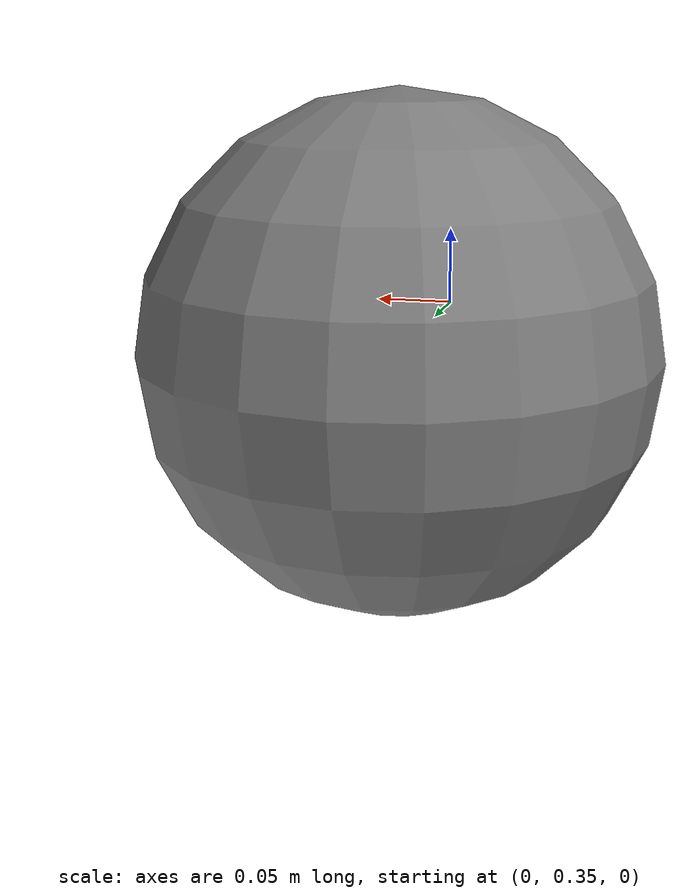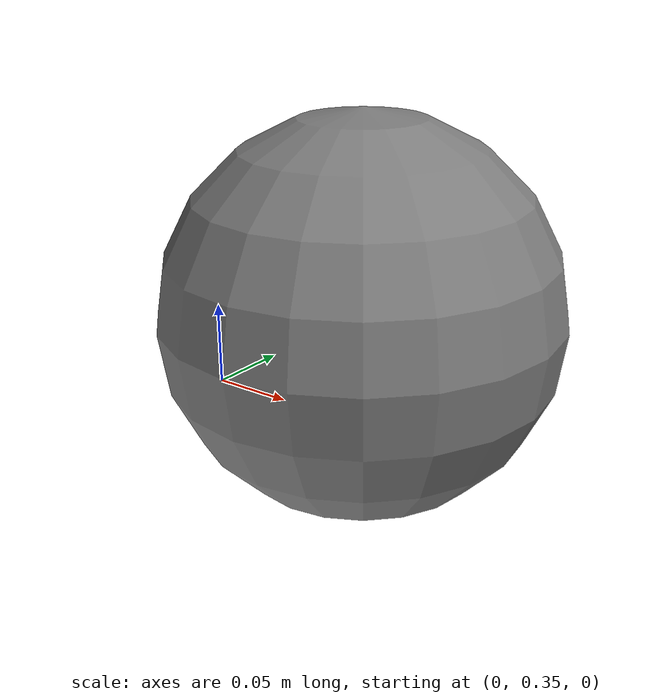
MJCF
<mujoco model="pendulum">
  <compiler inertiafromgeom="true"/>
  <option gravity="0 0 -9.81" timestep="0.001"/>
  <custom>
    <!-- brax physics parameters -->
    <numeric data="1000.0" name="constraint_limit_stiffness"/>
    <numeric data="5000.0" name="constraint_stiffness"/>
    <numeric data="1.0" name="constraint_ang_damping"/>
    <numeric data="2.0" name="constraint_vel_damping"/>
  </custom>
  <worldbody>
    <body name="body1" pos="0 0 0">
      <joint axis="1 0 0" name="hinge1" pos="0 0 0" type="hinge"/>
      <geom name="sphere1" pos="0 0.5 0" size=".15" mass="1" type="sphere"/>
    </body>
  </worldbody>
  <actuator>
    <motor ctrllimited="true" ctrlrange="-100.0 100.0" joint="hinge1" gear="150 0 0 0 0 0"/>
  </actuator>
</mujoco>
